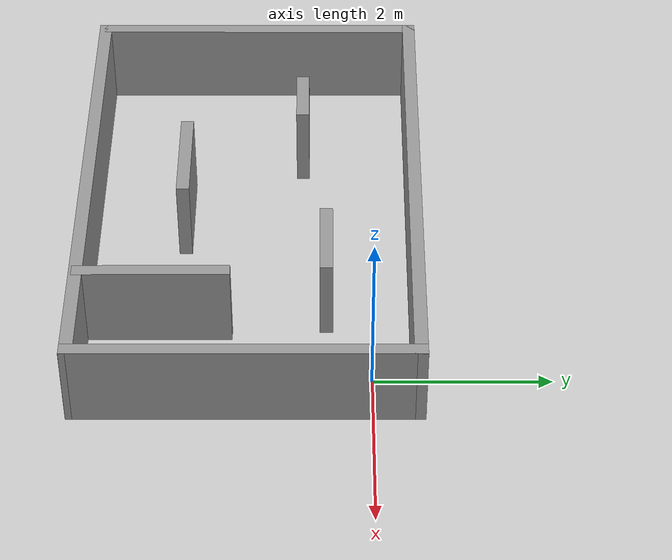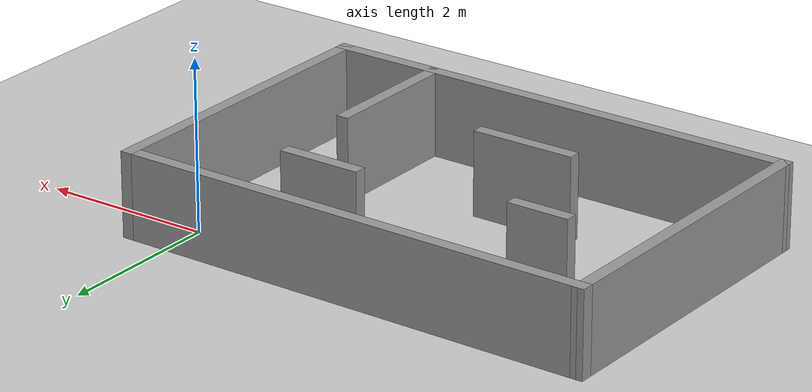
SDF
<sdf version="1.6">
 <world name="default">
  <light name="sun" type="directional">
   <pose>0 0 10 0 -0 0</pose>
   <diffuse>0.8 0.8 0.8 1</diffuse>
   <specular>0.2 0.2 0.2 1</specular>
   <attenuation>
    <range>1000</range>
    <constant>0.9</constant>
    <linear>0.01</linear>
    <quadratic>0.001</quadratic>
   </attenuation>
   <direction>-0.5 0.1 -0.9</direction>
  </light>
  <gravity>0 0 -9.8</gravity>
  <magnetic_field>6e-06 2.3e-05 -4.2e-05</magnetic_field>
  <atmosphere type="adiabatic"/>
  <physics name="default_physics" default="0" type="ode">
   <max_step_size>0.001</max_step_size>
   <real_time_factor>1</real_time_factor>
   <real_time_update_rate>1000</real_time_update_rate>
  </physics>
  <scene><ambient>0.4 0.4 0.4 1</ambient><background>0.7 0.7 0.7 1</background><shadows>1</shadows></scene>
  <audio><device>default</device></audio>
  <spherical_coordinates>
   <surface_model>EARTH_WGS84</surface_model>
   <latitude_deg>0</latitude_deg>
   <longitude_deg>0</longitude_deg>
   <elevation>0</elevation>
   <heading_deg>0</heading_deg>
  </spherical_coordinates>
  <model name="world1">
   <pose>-2.38765 -1.36879 0 0 -0 0</pose>
   <link name="Wall_27">
    <collision name="Wall_27_Collision">
     <geometry><box><size>5.9 0.15 1</size></box></geometry>
     <pose>0 0 0.5 0 -0 0</pose>
    </collision>
    <visual name="Wall_27_Visual">
     <pose>0 0 0.5 0 -0 0</pose>
     <geometry><box><size>5.9 0.15 1</size></box></geometry>
     <material>
      <script><uri>file://media/materials/scripts/gazebo.material</uri><name>Gazebo/Grey</name></script>
      <ambient>1 1 1 1</ambient>
     </material>
     <meta><layer>0</layer></meta>
    </visual>
    <pose>-0.005107 -1.90351 0 0 -0 0</pose>
   </link>
   <link name="Wall_32">
    <collision name="Wall_32_Collision">
     <geometry><box><size>3.92444 0.15 1</size></box></geometry>
     <pose>0 0 0.5 0 -0 0</pose>
    </collision>
    <visual name="Wall_32_Visual">
     <pose>0 0 0.5 0 -0 0</pose>
     <geometry><box><size>3.92444 0.15 1</size></box></geometry>
     <material>
      <script><uri>file://media/materials/scripts/gazebo.material</uri><name>Gazebo/Grey</name></script>
      <ambient>1 1 1 1</ambient>
     </material>
     <meta><layer>0</layer></meta>
    </visual>
    <pose>2.87489 -0.01651 0 0 -0 1.56815</pose>
   </link>
   <link name="Wall_34">
    <collision name="Wall_34_Collision">
     <geometry><box><size>5.89333 0.15 1</size></box></geometry>
     <pose>0 0 0.5 0 -0 0</pose>
    </collision>
    <visual name="Wall_34_Visual">
     <pose>0 0 0.5 0 -0 0</pose>
     <geometry><box><size>5.89333 0.15 1</size></box></geometry>
     <material>
      <script><uri>file://media/materials/scripts/gazebo.material</uri><name>Gazebo/Grey</name></script>
      <ambient>1 1 1 1</ambient>
     </material>
     <meta><layer>0</layer></meta>
    </visual>
    <pose>0.008393 1.88699 0 0 -0 3.13585</pose>
   </link>
   <link name="Wall_35">
    <collision name="Wall_35_Collision">
     <geometry><box><size>3.95701 0.15 1</size></box></geometry>
     <pose>0 0 0.5 0 -0 0</pose>
    </collision>
    <visual name="Wall_35_Visual">
     <pose>0 0 0.5 0 -0 0</pose>
     <geometry><box><size>3.95701 0.15 1</size></box></geometry>
     <material>
      <script><uri>file://media/materials/scripts/gazebo.material</uri><name>Gazebo/Grey</name></script>
      <ambient>1 1 1 1</ambient>
     </material>
     <meta><layer>0</layer></meta>
    </visual>
    <pose>-2.87161 -1e-05 0 0 -0 -1.57526</pose>
   </link>
   <link name="Wall_37">
    <collision name="Wall_37_Collision">
     <geometry><box><size>0.75 0.15 1</size></box></geometry>
     <pose>0 0 0.5 0 -0 0</pose>
    </collision>
    <visual name="Wall_37_Visual">
     <pose>0 0 0.5 0 -0 0</pose>
     <geometry><box><size>0.75 0.15 1</size></box></geometry>
     <material>
      <script><uri>file://media/materials/scripts/gazebo.material</uri><name>Gazebo/Grey</name></script>
      <ambient>1 1 1 1</ambient>
     </material>
     <meta><layer>0</layer></meta>
    </visual>
    <pose>-1.49211 0.58549 0 0 -0 0</pose>
   </link>
   <link name="Wall_41">
    <collision name="Wall_41_Collision">
     <geometry><box><size>1 0.15 1</size></box></geometry>
     <pose>0 0 0.5 0 -0 0</pose>
    </collision>
    <visual name="Wall_41_Visual">
     <pose>0 0 0.5 0 -0 0</pose>
     <geometry><box><size>1 0.15 1</size></box></geometry>
     <material>
      <script><uri>file://media/materials/scripts/gazebo.material</uri><name>Gazebo/Grey</name></script>
      <ambient>1 1 1 1</ambient>
     </material>
     <meta><layer>0</layer></meta>
    </visual>
    <pose>1.10189 0.86449 0 0 -0 0</pose>
   </link>
   <link name="Wall_43">
    <collision name="Wall_43_Collision">
     <geometry><box><size>1.25 0.15 1</size></box></geometry>
     <pose>0 0 0.5 0 -0 0</pose>
    </collision>
    <visual name="Wall_43_Visual">
     <pose>0 0 0.5 0 -0 0</pose>
     <geometry><box><size>1.25 0.15 1</size></box></geometry>
     <material>
      <script><uri>file://media/materials/scripts/gazebo.material</uri><name>Gazebo/Grey</name></script>
      <ambient>1 1 1 1</ambient>
     </material>
     <meta><layer>0</layer></meta>
    </visual>
    <pose>-0.368107 -0.78851 0 0 -0 3.14159</pose>
   </link>
   <link name="Wall_45">
    <collision name="Wall_45_Collision">
     <geometry><box><size>1.75 0.15 1</size></box></geometry>
     <pose>0 0 0.5 0 -0 0</pose>
    </collision>
    <visual name="Wall_45_Visual">
     <pose>0 0 0.5 0 -0 0</pose>
     <geometry><box><size>1.75 0.15 1</size></box></geometry>
     <material>
      <script><uri>file://media/materials/scripts/gazebo.material</uri><name>Gazebo/Grey</name></script>
      <ambient>1 1 1 1</ambient>
     </material>
     <meta><layer>0</layer></meta>
    </visual>
    <pose>1.63389 -1.07451 0 0 -0 1.5708</pose>
   </link>
   <static>1</static>
  </model>
  <model name="ground_plane">
   <static>1</static>
   <link name="link">
    <collision name="collision">
     <geometry><plane><normal>0 0 1</normal><size>100 100</size></plane></geometry>
     <surface>
      <contact><collide_bitmask>65535</collide_bitmask></contact>
      <friction><ode><mu>100</mu><mu2>50</mu2></ode></friction>
     </surface>
    </collision>
    <visual name="visual">
     <cast_shadows>0</cast_shadows>
     <geometry><plane><normal>0 0 1</normal><size>100 100</size></plane></geometry>
     <material>
      <script><uri>file://media/materials/scripts/gazebo.material</uri><name>Gazebo/Grey</name></script>
     </material>
    </visual>
   </link>
   <pose>-6.18173 -1.37718 0 0 -0 0</pose>
  </model>
 </world>
</sdf>
